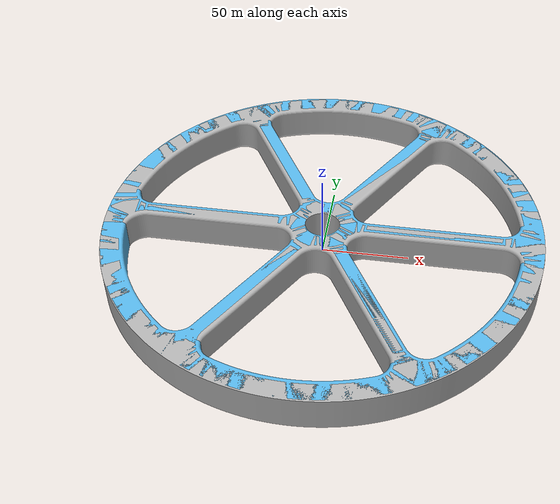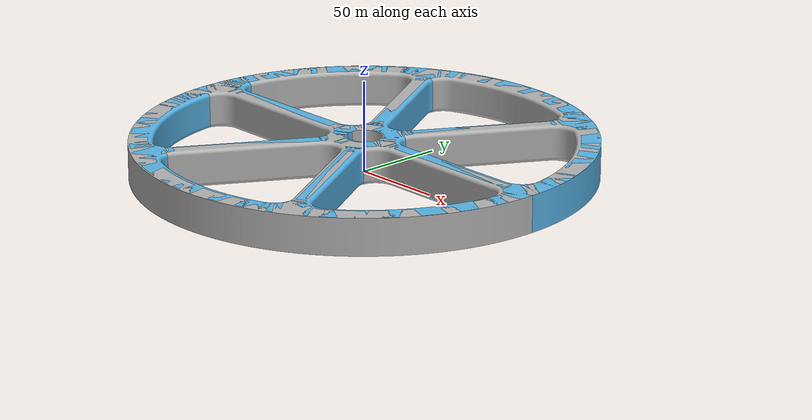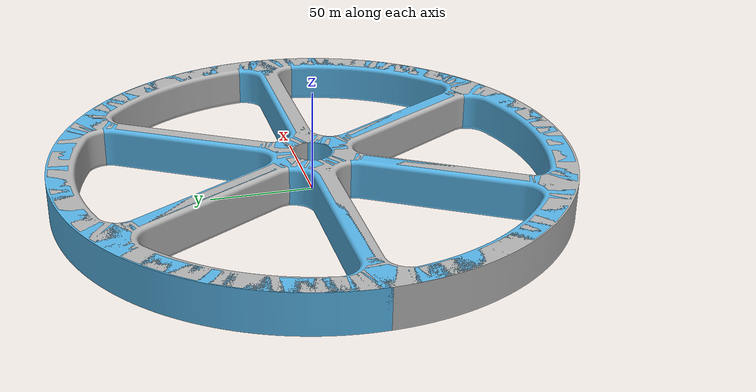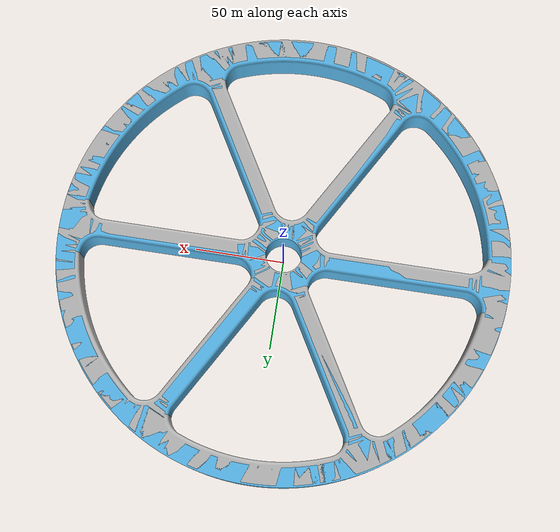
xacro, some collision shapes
<?xml version="1.0"?>
<robot name="custom_robot" xmlns:xacro="http://www.ros.org/wiki/xacro">
    <xacro:include filename="$(find custom_robot)/urdf/custom_robot.gazebo"/>
    <link name="base"></link>
    <joint name="base_joint" type="fixed">
        <origin xyz="0.0 0.0 0.0" rpy="0.0 0.0 0.0"/>
        <parent link="base"/>
        <child link="base_plate"/>
    </joint>

    <link name="base_plate">
        <pose> 0 0 0.1 0 0 0 </pose>
        <origin xyz="0.0 0.0 0.0" rpy="0.0 0.0 0.0"/>
        <inertial>
            <origin xyz="0.0 0.0 0.0" rpy="0.0 0.0 0.0"/>
            <mass value="0.0"/>
            <inertia ixx="0.0" ixy="0.0" ixz="0.0" iyy="0.0" iyz="0.0" izz="0.0"/>
        </inertial>
        <visual name="base_plate_visual">
            <geometry>
                <mesh filename="package://custom_robot/meshes/BasePlate.dae"/>
            </geometry>
        </visual>
        <collision>
            <origin xyz="0.0 0.0 0.0" rpy="0.0 0.0 0.0"/>
            <geometry>
                <box size="0.0 0.0 0.0"/>
            </geometry>
        </collision>
    </link>

	<link name="right_wheel_hub">
		<inertial>
			<origin xyz="0.0 -0.25 0.0" rpy="0.0 0.0 0.0"/>
			<mass value="0.0"/>
			<inertia ixx="0.0" ixy="0.0" ixz="0.0" iyy="0.0" iyz="0.0" izz="0.0"/>
		</inertial>
		<visual name="right_wheel_hub_visual">
			<origin xyz="0.0 -0.25 0.0" rpy="0.0 0.0 0.0"/>
			<geometry>
				<mesh filename="package://custom_robot/meshes/BearingMount.dae"/>
			</geometry>
		</visual>
		<collision name="right_wheel_hub_collision">
			<origin xyz="0.0 -0.25 0.0" rpy="0.0 0.0 0.0"/>
			<geometry>
				<cylinder radius="0.150" length="0.010"/>
			</geometry>
		</collision>
	</link>
	<joint name="right_wheel_hub_joint" type="fixed">
		<origin xyz="0.0 0.0 0.0" rpy="0.0 0.0 0.0"/>
		<parent link="base_plate"/>
		<child link="right_wheel_hub"/>
        <axis xyz="0.0 1.0 0.0"/>
	</joint>

	<link name="left_wheel_hub">
		<inertial>
			<origin xyz="0.0 0.25 0.0" rpy="0.0 0.0 0.0"/>
			<mass value="0.0"/>
			<inertia ixx="0.0" ixy="0.0" ixz="0.0" iyy="0.0" iyz="0.0" izz="0.0"/>
		</inertial>
		<visual name="left_wheel_hub_visual">
			<origin xyz="0.0 0.25 0.0" rpy="0.0 0.0 0.0"/>
			<geometry>
				<mesh filename="package://custom_robot/meshes/BearingMount.dae"/>
			</geometry>
		</visual>
		<collision name="left_wheel_hub_collision">
			<origin xyz="0.0 0.25 0.0" rpy="0.0 0.0 0.0"/>
			<geometry>
				<cylinder radius="0.150" length="0.010"/>
			</geometry>
		</collision>
	</link>
	<joint name="left_wheel_hub_joint" type="fixed">
		<origin xyz="0.0 0.0 0.0" rpy="0.0 0.0 0.0"/>
		<parent link="base_plate"/>
		<child link="left_wheel_hub"/>
        <axis xyz="0.0 0.0 0.0"/>
	</joint>

	<link name="left_wheel_bearing">
		<inertial>
			<origin xyz="0.0  0.30 0.0" rpy="0.0 0.0 1.57"/>
			<mass value="0.0"/>
			<inertia ixx="0.0" ixy="0.0" ixz="0.0" iyy="0.0" iyz="0.0" izz="0.0"/>
		</inertial>
		<visual name="left_wheel_bearing_visual">
			<origin xyz="0.0  0.30 0.0" rpy="0.0 0.0 1.57"/>
			<geometry>
				<mesh filename="package://custom_robot/meshes/WheelBearing.dae"/>
			</geometry>
		</visual>
		<collision name="left_wheel_bearing_collision">
			<origin xyz="0.0  0.30 0.0" rpy="0.0 0.0 1.57"/>
			<geometry>
				<cylinder radius="0.150" length="0.010"/>
			</geometry>
		</collision>
	</link>
	<joint name="left_wheel_bearing_joint" type="fixed">
		<origin xyz="0.0 0.0 0.0" rpy="0.0 0.0 0.0"/>
		<parent link="left_wheel_hub"/>
		<child link="left_wheel_bearing"/>
        <axis xyz="0.0 0.0 0.0"/>
	</joint>

	<link name="right_wheel_bearing">
		<inertial>
			<origin xyz="0.0 -0.30 0.0" rpy="0.0 0.0 1.57"/>
			<mass value="0.0"/>
			<inertia ixx="0.0" ixy="0.0" ixz="0.0" iyy="0.0" iyz="0.0" izz="0.0"/>
		</inertial>
		<visual name="left_wheel_bearing_visual">
			<origin xyz="0.0 -0.30 0.0" rpy="0.0 0.0 1.57"/>
			<geometry>
				<mesh filename="package://custom_robot/meshes/WheelBearing.dae"/>
			</geometry>
		</visual>
		<collision name="right_wheel_bearing_collision">
			<origin xyz="0.0 -0.30 0.0" rpy="0.0 0.0 1.57"/>
			<geometry>
				<cylinder radius="0.150" length="0.010"/>
			</geometry>
		</collision>
	</link>
	<joint name="right_wheel_bearing_joint" type="fixed">
		<origin xyz="0.0 0.0 0.0" rpy="0.0 0.0 0.0"/>
		<parent link="right_wheel_hub"/>
		<child link="right_wheel_bearing"/>
        <axis xyz="0.0 0.0 0.0"/>
	</joint>

	<link name="right_wheel_shaft">
		<inertial>
			<origin xyz="0.0 -0.35 0.0" rpy="0.0 0.0 1.57"/>
			<mass value="0.0"/>
			<inertia ixx="0.0" ixy="0.0" ixz="0.0" iyy="0.0" iyz="0.0" izz="0.0"/>
		</inertial>
		<visual name="right_wheel_shaft_visual">
			<origin xyz="0.0 -0.35 0.0" rpy="0.0 0.0 1.57"/>
			<geometry>
				<mesh filename="package://custom_robot/meshes/WheelShaft.dae"/>
			</geometry>
		</visual>
		<collision name="right_wheel_shaft_collision">
			<origin xyz="0.0 -0.35 0.0" rpy="0.0 0.0 1.57"/>
			<geometry>
				<cylinder radius="0.150" length="0.010"/>
			</geometry>
		</collision>
	</link>
	<joint name="right_wheel_shaft_joint" type="continuous">
		<origin xyz="0.0 0.0 0.0" rpy="0.0 0.0 0.0"/>
		<parent link="right_wheel_bearing"/>
		<child link="right_wheel_shaft"/>
        <axis xyz="0.0 1 0.0" rpy="0.0 0.0 0.0"/>
        <limit effort="10000" velocity="1000"/>
        <dynamics damping="1.0" friction="1.0"/>
	</joint>

	<link name="right_wheel">
		<inertial>
			<origin xyz="0.0 -0.5 0.0" rpy="0.0 0.0 0.0"/>
			<mass value="0.0"/>
			<inertia ixx="0.0" ixy="0.0" ixz="0.0" iyy="0.0" iyz="0.0" izz="0.0"/>
		</inertial>
		<visual name="right_wheel_visual">
			<origin xyz="0.0 -0.5 0.0" rpy="0.0 0.0 0.0"/>
			<geometry>
				<mesh filename="package://custom_robot/meshes/Wheel.dae"/>
			</geometry>
		</visual>
		<collision name="right_wheel_collision">
			<origin xyz="0.0 -0.5 0.0" rpy="0.0 0.0 0.0"/>
			<geometry>
				<cylinder radius="150" length="10.0"/>
			</geometry>
		</collision>
	</link>
	<joint name="right_wheel_joint" type="fixed">
		<origin xyz="0.0 0.0 0.0" rpy="0.0 0.0 0.0"/>
		<parent link="right_wheel_shaft"/>
		<child link="right_wheel"/>
        <axis xyz="0.0 1 0.0"/>
	</joint>

	<link name="left_wheel_shaft">
		<inertial>
			<origin xyz="0.0  0.35 0.0" rpy="0.0 0.0 -1.57"/>
			<mass value="0.0"/>
			<inertia ixx="0.0" ixy="0.0" ixz="0.0" iyy="0.0" iyz="0.0" izz="0.0"/>
		</inertial>
		<visual name="left_wheel_shaft_visual">
			<origin xyz="0.0  0.35 0.0" rpy="0.0 0.0 -1.57"/>
			<geometry>
				<mesh filename="package://custom_robot/meshes/WheelShaft.dae"/>
			</geometry>
		</visual>
		<collision name="left_wheel_shaft_collision">
			<origin xyz="0.0  0.35 0.0" rpy="0.0 0.0 -1.57"/>
			<geometry>
				<cylinder radius="0.150" length="0.010"/>
			</geometry>
		</collision>
	</link>
	<joint name="left_wheel_shaft_joint" type="continuous">
		<origin xyz="0.0 0.0 0.0" rpy="0.0 0.0 0.0"/>
		<parent link="left_wheel_bearing"/>
		<child link="left_wheel_shaft"/>
        <axis xyz="0.0 1 0.0" rpy="0.0 0.0 0.0"/>
        <limit effort="10000" velocity="1000"/>
        <dynamics damping="1.0" friction="1.0"/>
	</joint>

	<link name="left_wheel">
		<inertial>
			<origin xyz="0.0 0.5 0.0" rpy="0.0 0.0 0.0"/>
			<mass value="0.0"/>
			<inertia ixx="0.0" ixy="0.0" ixz="0.0" iyy="0.0" iyz="0.0" izz="0.0"/>
		</inertial>
		<visual name="left_wheel_visual">
			<origin xyz="0.0 0.5 0.0" rpy="0.0 0.0 0.0"/>
			<geometry>
				<mesh filename="package://custom_robot/meshes/Wheel.dae"/>
			</geometry>
		</visual>
		<collision name="left_wheel_collision">
			<origin xyz="0.0 0.5 0.0" rpy="0.0 0.0 0.0"/>
			<geometry>
				<cylinder radius="150" length="10.0"/>
			</geometry>
		</collision>
	</link>
	<joint name="left_wheel_joint" type="fixed">
		<origin xyz="0.0 0.0 0.0" rpy="0.0 0.0 0.0"/>
		<parent link="left_wheel_shaft"/>
		<child link="left_wheel"/>
        <axis xyz="0.0 1 0.0"/>
	</joint>

	<link name="left_timing_pulley">
		<inertial>
			<origin xyz="0.0  0.20 0.0" rpy="0.0 0.0 -1.57"/>
			<mass value="0.0"/>
			<inertia ixx="0.0" ixy="0.0" ixz="0.0" iyy="0.0" iyz="0.0" izz="0.0"/>
		</inertial>
		<visual name="left_timing_pulley_visual">
			<origin xyz="0.0  0.20 0.0" rpy="0.0 0.0 -1.57"/>
			<geometry>
				<mesh filename="package://custom_robot/meshes/TimingPulley.dae"/>
			</geometry>
		</visual>
		<collision name="left_timing_pulley_collision">
			<origin xyz="0.0  0.20 0.0" rpy="0.0 0.0 -1.57"/>
			<geometry>
				<cylinder radius="0.150" length="0.010"/>
			</geometry>
		</collision>
	</link>
	<joint name="left_timing_pulley_joint" type="fixed">
		<origin xyz="0.0 0.0 0.0" rpy="0.0 0.0 0.0"/>
		<parent link="left_wheel_shaft"/>
		<child link="left_timing_pulley"/>
	</joint>

	<link name="right_timing_pulley">
		<inertial>
			<origin xyz="0.0  0.20 0.0" rpy="0.0 0.0 -1.57"/>
			<mass value="0.0"/>
			<inertia ixx="0.0" ixy="0.0" ixz="0.0" iyy="0.0" iyz="0.0" izz="0.0"/>
		</inertial>
		<visual name="right_timing_pulley_visual">
			<origin xyz="0.0  0.20 0.0" rpy="0.0 0.0 -1.57"/>
			<geometry>
				<mesh filename="package://custom_robot/meshes/TimingPulley.dae"/>
			</geometry>
		</visual>
		<collision name="right_timing_pulley_collision">
			<origin xyz="0.0  0.20 0.0" rpy="0.0 0.0 -1.57"/>
			<geometry>
				<cylinder radius="0.150" length="0.010"/>
			</geometry>
		</collision>
	</link>
	<joint name="right_timing_pulley_joint" type="fixed">
		<origin xyz="0.0 0.0 0.0" rpy="0.0 0.0 0.0"/>
		<parent link="right_wheel_shaft"/>
		<child link="right_timing_pulley"/>
	</joint>
	<link name="test_object">
		<inertial>
			<origin xyz="0.0  0.20 0.0" rpy="0.0 0.0 -1.57"/>
			<mass value="0.0"/>
			<inertia ixx="0.0" ixy="0.0" ixz="0.0" iyy="0.0" iyz="0.0" izz="0.0"/>
		</inertial>
		<visual name="test_object_visual">
			<origin xyz="0.0  0.20 0.0" rpy="0.0 0.0 -1.57"/>
			<geometry>
				<box size="0.001 0.001 0.001"/>
			</geometry>
		</visual>
		<collision name="test_object_collision">
			<origin xyz="0.0  0.20 0.0" rpy="0.0 0.0 -1.57"/>
			<geometry>
				<box size="0.001 0.001 0.001"/>
			</geometry>
		</collision>
	</link>
	<joint name="test_object_joint" type="fixed">
		<origin xyz="0.0 0.0 0.0" rpy="0.0 0.0 0.0"/>
		<parent link="base_plate"/>
		<child link="test_object"/>
	</joint>
	<link name="hokuyo">
        <origin xyz="0.0 0.0 0.0" rpy="0.0 0.0 0.0"/>
        <inertial>
            <mass value="1e-5"/>
            <inertia ixx="1e-6" ixy="0.0" ixz="0.0" iyy="1e-6" iyz="0.0" izz="1e-6"/>
        </inertial>

        <visual name="hokuyo_visual">
            <geometry>
                <mesh filename="package://custom_robot/meshes/hokuyo.dae"/>
            </geometry>
        </visual>

        <collision name="hokuyo_collision">
            <origin xyz="0.0 0.0 0.0" rpy="0.0 0.0 0.0"/>
            <geometry>
                <box size=".1 .1 .1"/>
            </geometry>
        </collision>
    </link>
    <joint name="hokuyo_joint" type="fixed">
        <origin xyz="0.15 0.0 .1" rpy="0.0 0.0 0.0"/>
        <parent link="base_plate"/>
        <child link="hokuyo"/>
        <axis xyz="0.0 1 0.0"/>
    </joint>

    <link name="camera">
        <inertial>
            <origin xyz="0.0 0.0 0.0" rpy="0.0 0.0 0.0"/>
            <mass value=".1"/>
            <box_inertia m="0.1" x="0.05" y="0.05" z="0.05"/>
            <inertia ixx="0.0" ixy="0.0" ixz="0.0" iyy="0.0" iyz="0.0" izz="0.0"/>
        </inertial>
        <visual name="">
            <origin xyz="0.0 0.0 0.0" rpy="0.0 0.0 0.0"/>
            <geometry>
                <box size="0.05 0.05 0.05"/>
            </geometry>
        </visual>
        <collision>
            <origin xyz="0.0 0.0 0.0" rpy="0.0 0.0 0.0"/>
            <geometry>
                <box size="0.05 0.05 0.05"/>
            </geometry>
        </collision>
    </link>
    <joint name="camera_joint" type="fixed">
        <origin xyz="0.0 0.0 0.0" rpy="0.0 0.0 0.0"/>
        <parent link="base_plate"/>
        <child link="camera"/>
        <axis xyz="0.0 1.0 0.0"/>
    </joint>
    <link name="stupid_bot">
        <inertial>
            <origin xyz="5.0 5.0 0.0" rpy="0.0 0.0 0.0"/>
            <mass value="0.0"/>
            <inertia ixx="0.0" ixy="0.0" ixz="0.0" iyy="0.0" iyz="0.0" izz="0.0"/>
        </inertial>
        <visual name="stupid_bot_visual">
            <origin xyz="5.0 5.0 0.0" rpy="0.0 0.0 0.0"/>
            <geometry>
                <mesh filename="package://custom_robot/meshes/Robot.dae"/>
            </geometry>
            <material name="">
                <color rgba="1.0 0.0 0.0 1.0"/>
                <texture filename=""/>
            </material>
        </visual>
        <collision name="stupid_bot_collision">
            <origin xyz="5.0 5.0 0.0" rpy="0.0 0.0 0.0"/>
            <geometry>
                <box size="1.0 1.0 1.0"/>
            </geometry>
        </collision>
    </link>
    <joint name="stupid_bot_joint" type="fixed">
        <origin xyz="0.0 0.0 0.0" rpy="0.0 0.0 0.0"/>
        <parent link="base_plate"/>
        <child link="stupid_bot"/>
        <axis xyz="0.0 0.0 0.0"/>
        <limit lower="0.0" upper="0.0" effort="0.0" velocity="0.0"/>
    </joint>
</robot>
